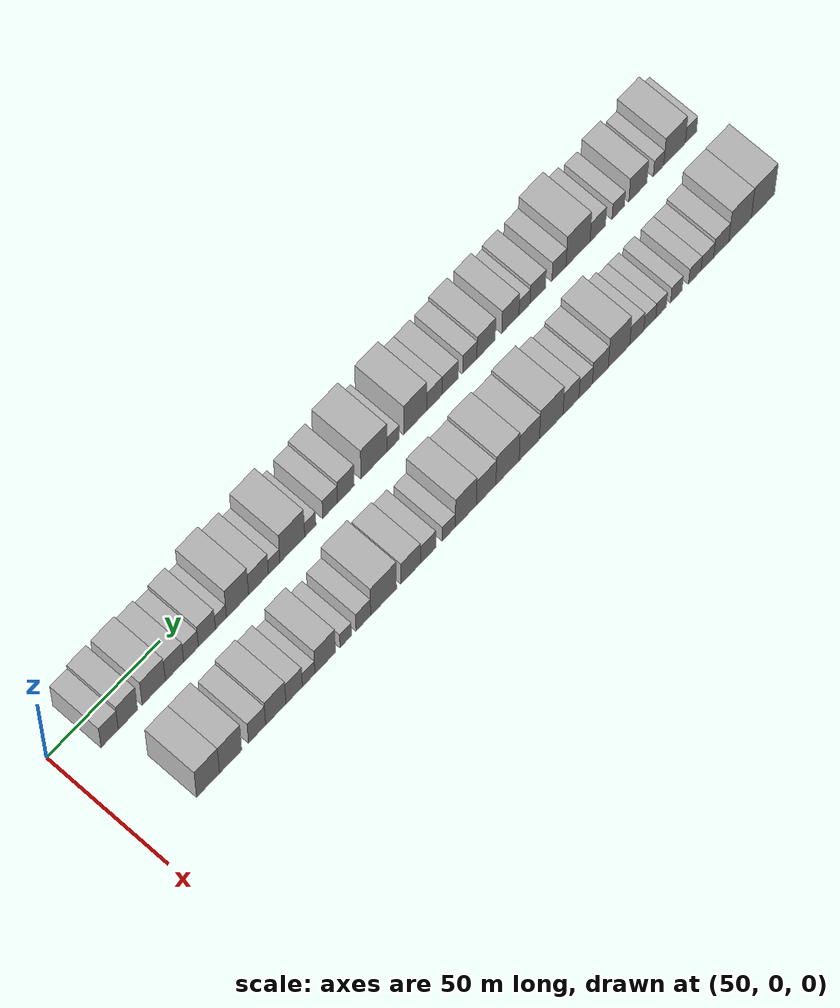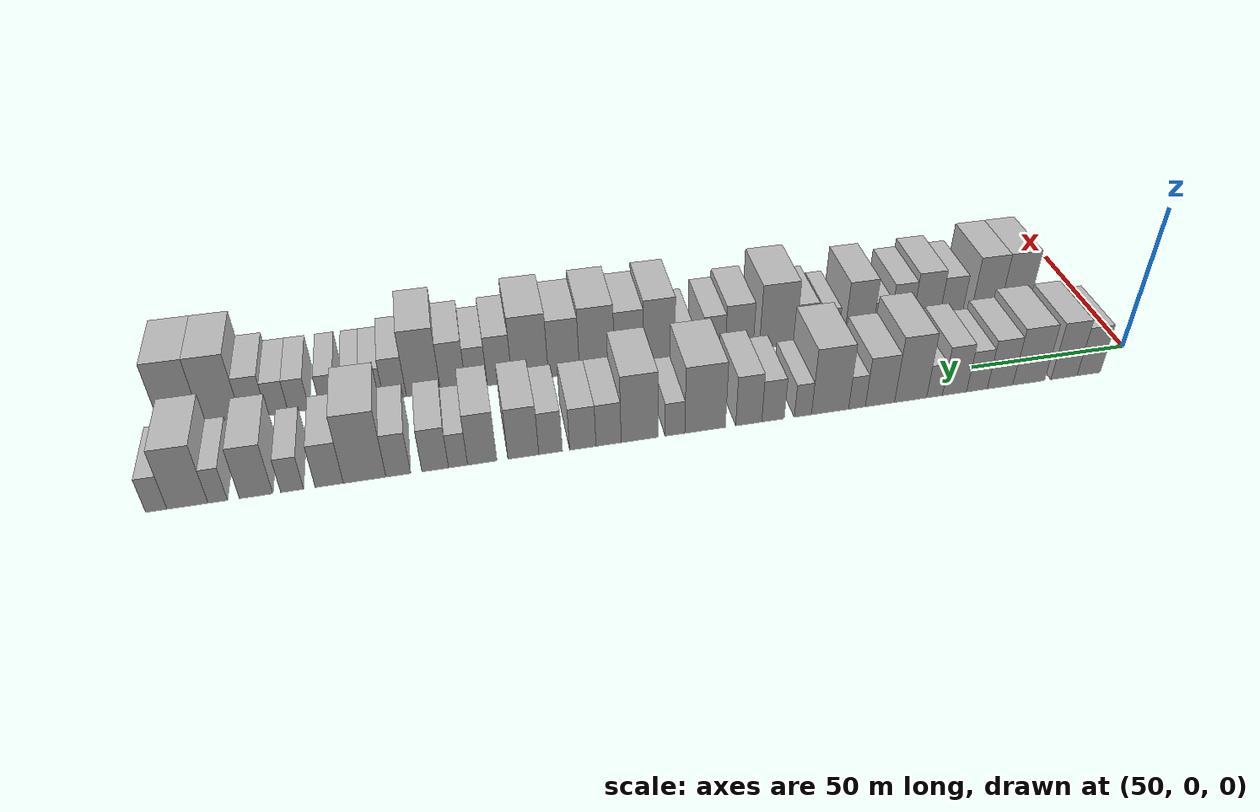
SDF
<sdf version="1.6">
 <world name="default">
  <model name="building_29">
   <static>1</static>
   <pose>50.0000 17.0681 0 0.000000 0.000000 0.000000</pose>
   <link name="link">
    <pose>0 0 9.00 0 0 0</pose>
    <collision name="collision"><geometry><box><size>20.0000 7.6307 18.0000</size></box></geometry></collision>
    <visual name="visual">
     <cast_shadows>0</cast_shadows>
     <geometry><box><size>20.0000 7.6307 18.0000</size></box></geometry>
     <material>
      <script>
       <uri>model://HANNAS_wall/materials/scripts</uri>
       <uri>model://HANNAS_wall/materials/textures</uri>
       <name>vrc/HANNAS_wall</name>
      </script>
     </material>
    </visual>
   </link>
  </model>
  <model name="building_30">
   <static>1</static>
   <pose>50.0000 25.1394 0 0.000000 0.000000 0.000000</pose>
   <link name="link">
    <pose>0 0 10.50 0 0 0</pose>
    <collision name="collision"><geometry><box><size>20.0000 8.5120 21.0000</size></box></geometry></collision>
    <visual name="visual">
     <cast_shadows>0</cast_shadows>
     <geometry><box><size>20.0000 8.5120 21.0000</size></box></geometry>
     <material>
      <script>
       <uri>model://HANNAS_wall/materials/scripts</uri>
       <uri>model://HANNAS_wall/materials/textures</uri>
       <name>vrc/HANNAS_wall</name>
      </script>
     </material>
    </visual>
   </link>
  </model>
  <model name="building_31">
   <static>1</static>
   <pose>50.0000 36.5549 0 0.000000 0.000000 0.000000</pose>
   <link name="link">
    <pose>0 0 10.50 0 0 0</pose>
    <collision name="collision"><geometry><box><size>20.0000 10.3190 21.0000</size></box></geometry></collision>
    <visual name="visual">
     <cast_shadows>0</cast_shadows>
     <geometry><box><size>20.0000 10.3190 21.0000</size></box></geometry>
     <material>
      <script>
       <uri>model://HANNAS_wall/materials/scripts</uri>
       <uri>model://HANNAS_wall/materials/textures</uri>
       <name>vrc/HANNAS_wall</name>
      </script>
     </material>
    </visual>
   </link>
  </model>
  <model name="building_32">
   <static>1</static>
   <pose>50.0000 45.7655 0 0.000000 0.000000 0.000000</pose>
   <link name="link">
    <pose>0 0 9.00 0 0 0</pose>
    <collision name="collision"><geometry><box><size>20.0000 8.1023 18.0000</size></box></geometry></collision>
    <visual name="visual">
     <cast_shadows>0</cast_shadows>
     <geometry><box><size>20.0000 8.1023 18.0000</size></box></geometry>
     <material>
      <script>
       <uri>model://HANNAS_wall/materials/scripts</uri>
       <uri>model://HANNAS_wall/materials/textures</uri>
       <name>vrc/HANNAS_wall</name>
      </script>
     </material>
    </visual>
   </link>
  </model>
  <model name="building_33">
   <static>1</static>
   <pose>50.0000 53.0973 0 0.000000 0.000000 0.000000</pose>
   <link name="link">
    <pose>0 0 7.50 0 0 0</pose>
    <collision name="collision"><geometry><box><size>20.0000 6.5614 15.0000</size></box></geometry></collision>
    <visual name="visual">
     <cast_shadows>0</cast_shadows>
     <geometry><box><size>20.0000 6.5614 15.0000</size></box></geometry>
     <material>
      <script>
       <uri>model://HANNAS_wall/materials/scripts</uri>
       <uri>model://HANNAS_wall/materials/textures</uri>
       <name>vrc/HANNAS_wall</name>
      </script>
     </material>
    </visual>
   </link>
  </model>
  <model name="building_34">
   <static>1</static>
   <pose>50.0000 60.1738 0 0.000000 0.000000 0.000000</pose>
   <link name="link">
    <pose>0 0 9.00 0 0 0</pose>
    <collision name="collision"><geometry><box><size>20.0000 7.5915 18.0000</size></box></geometry></collision>
    <visual name="visual">
     <cast_shadows>0</cast_shadows>
     <geometry><box><size>20.0000 7.5915 18.0000</size></box></geometry>
     <material>
      <script>
       <uri>model://HANNAS_wall/materials/scripts</uri>
       <uri>model://HANNAS_wall/materials/textures</uri>
       <name>vrc/HANNAS_wall</name>
      </script>
     </material>
    </visual>
   </link>
  </model>
  <model name="building_35">
   <static>1</static>
   <pose>50.0000 66.4325 0 0.000000 0.000000 0.000000</pose>
   <link name="link">
    <pose>0 0 6.00 0 0 0</pose>
    <collision name="collision"><geometry><box><size>20.0000 4.9259 12.0000</size></box></geometry></collision>
    <visual name="visual">
     <cast_shadows>0</cast_shadows>
     <geometry><box><size>20.0000 4.9259 12.0000</size></box></geometry>
     <material>
      <script>
       <uri>model://HANNAS_wall/materials/scripts</uri>
       <uri>model://HANNAS_wall/materials/textures</uri>
       <name>vrc/HANNAS_wall</name>
      </script>
     </material>
    </visual>
   </link>
  </model>
  <model name="building_36">
   <static>1</static>
   <pose>50.0000 73.8627 0 0.000000 0.000000 0.000000</pose>
   <link name="link">
    <pose>0 0 12.00 0 0 0</pose>
    <collision name="collision"><geometry><box><size>20.0000 9.9345 24.0000</size></box></geometry></collision>
    <visual name="visual">
     <cast_shadows>0</cast_shadows>
     <geometry><box><size>20.0000 9.9345 24.0000</size></box></geometry>
     <material>
      <script>
       <uri>model://HANNAS_wall/materials/scripts</uri>
       <uri>model://HANNAS_wall/materials/textures</uri>
       <name>vrc/HANNAS_wall</name>
      </script>
     </material>
    </visual>
   </link>
  </model>
  <model name="building_37">
   <static>1</static>
   <pose>50.0000 83.3168 0 0.000000 0.000000 0.000000</pose>
   <link name="link">
    <pose>0 0 9.00 0 0 0</pose>
    <collision name="collision"><geometry><box><size>20.0000 8.9738 18.0000</size></box></geometry></collision>
    <visual name="visual">
     <cast_shadows>0</cast_shadows>
     <geometry><box><size>20.0000 8.9738 18.0000</size></box></geometry>
     <material>
      <script>
       <uri>model://HANNAS_wall/materials/scripts</uri>
       <uri>model://HANNAS_wall/materials/textures</uri>
       <name>vrc/HANNAS_wall</name>
      </script>
     </material>
    </visual>
   </link>
  </model>
  <model name="building_38">
   <static>1</static>
   <pose>50.0000 90.3598 0 0.000000 0.000000 0.000000</pose>
   <link name="link">
    <pose>0 0 6.00 0 0 0</pose>
    <collision name="collision"><geometry><box><size>20.0000 5.1121 12.0000</size></box></geometry></collision>
    <visual name="visual">
     <cast_shadows>0</cast_shadows>
     <geometry><box><size>20.0000 5.1121 12.0000</size></box></geometry>
     <material>
      <script>
       <uri>model://HANNAS_wall/materials/scripts</uri>
       <uri>model://HANNAS_wall/materials/textures</uri>
       <name>vrc/HANNAS_wall</name>
      </script>
     </material>
    </visual>
   </link>
  </model>
  <model name="building_39">
   <static>1</static>
   <pose>50.0000 98.5224 0 0.000000 0.000000 0.000000</pose>
   <link name="link">
    <pose>0 0 12.00 0 0 0</pose>
    <collision name="collision"><geometry><box><size>20.0000 11.2131 24.0000</size></box></geometry></collision>
    <visual name="visual">
     <cast_shadows>0</cast_shadows>
     <geometry><box><size>20.0000 11.2131 24.0000</size></box></geometry>
     <material>
      <script>
       <uri>model://HANNAS_wall/materials/scripts</uri>
       <uri>model://HANNAS_wall/materials/textures</uri>
       <name>vrc/HANNAS_wall</name>
      </script>
     </material>
    </visual>
   </link>
  </model>
  <model name="building_40">
   <static>1</static>
   <pose>50.0000 106.6938 0 0.000000 0.000000 0.000000</pose>
   <link name="link">
    <pose>0 0 6.00 0 0 0</pose>
    <collision name="collision"><geometry><box><size>20.0000 5.1296 12.0000</size></box></geometry></collision>
    <visual name="visual">
     <cast_shadows>0</cast_shadows>
     <geometry><box><size>20.0000 5.1296 12.0000</size></box></geometry>
     <material>
      <script>
       <uri>model://HANNAS_wall/materials/scripts</uri>
       <uri>model://HANNAS_wall/materials/textures</uri>
       <name>vrc/HANNAS_wall</name>
      </script>
     </material>
    </visual>
   </link>
  </model>
  <model name="building_41">
   <static>1</static>
   <pose>50.0000 115.6049 0 0.000000 0.000000 0.000000</pose>
   <link name="link">
    <pose>0 0 7.50 0 0 0</pose>
    <collision name="collision"><geometry><box><size>20.0000 6.6927 15.0000</size></box></geometry></collision>
    <visual name="visual">
     <cast_shadows>0</cast_shadows>
     <geometry><box><size>20.0000 6.6927 15.0000</size></box></geometry>
     <material>
      <script>
       <uri>model://HANNAS_wall/materials/scripts</uri>
       <uri>model://HANNAS_wall/materials/textures</uri>
       <name>vrc/HANNAS_wall</name>
      </script>
     </material>
    </visual>
   </link>
  </model>
  <model name="building_42">
   <static>1</static>
   <pose>50.0000 122.7920 0 0.000000 0.000000 0.000000</pose>
   <link name="link">
    <pose>0 0 9.00 0 0 0</pose>
    <collision name="collision"><geometry><box><size>20.0000 7.6814 18.0000</size></box></geometry></collision>
    <visual name="visual">
     <cast_shadows>0</cast_shadows>
     <geometry><box><size>20.0000 7.6814 18.0000</size></box></geometry>
     <material>
      <script>
       <uri>model://HANNAS_wall/materials/scripts</uri>
       <uri>model://HANNAS_wall/materials/textures</uri>
       <name>vrc/HANNAS_wall</name>
      </script>
     </material>
    </visual>
   </link>
  </model>
  <model name="building_43">
   <static>1</static>
   <pose>50.0000 135.5515 0 0.000000 0.000000 0.000000</pose>
   <link name="link">
    <pose>0 0 12.00 0 0 0</pose>
    <collision name="collision"><geometry><box><size>20.0000 11.8377 24.0000</size></box></geometry></collision>
    <visual name="visual">
     <cast_shadows>0</cast_shadows>
     <geometry><box><size>20.0000 11.8377 24.0000</size></box></geometry>
     <material>
      <script>
       <uri>model://HANNAS_wall/materials/scripts</uri>
       <uri>model://HANNAS_wall/materials/textures</uri>
       <name>vrc/HANNAS_wall</name>
      </script>
     </material>
    </visual>
   </link>
  </model>
  <model name="building_44">
   <static>1</static>
   <pose>50.0000 144.2986 0 0.000000 0.000000 0.000000</pose>
   <link name="link">
    <pose>0 0 6.00 0 0 0</pose>
    <collision name="collision"><geometry><box><size>20.0000 5.6564 12.0000</size></box></geometry></collision>
    <visual name="visual">
     <cast_shadows>0</cast_shadows>
     <geometry><box><size>20.0000 5.6564 12.0000</size></box></geometry>
     <material>
      <script>
       <uri>model://HANNAS_wall/materials/scripts</uri>
       <uri>model://HANNAS_wall/materials/textures</uri>
       <name>vrc/HANNAS_wall</name>
      </script>
     </material>
    </visual>
   </link>
  </model>
  <model name="building_45">
   <static>1</static>
   <pose>50.0000 154.3961 0 0.000000 0.000000 0.000000</pose>
   <link name="link">
    <pose>0 0 12.00 0 0 0</pose>
    <collision name="collision"><geometry><box><size>20.0000 10.5387 24.0000</size></box></geometry></collision>
    <visual name="visual">
     <cast_shadows>0</cast_shadows>
     <geometry><box><size>20.0000 10.5387 24.0000</size></box></geometry>
     <material>
      <script>
       <uri>model://HANNAS_wall/materials/scripts</uri>
       <uri>model://HANNAS_wall/materials/textures</uri>
       <name>vrc/HANNAS_wall</name>
      </script>
     </material>
    </visual>
   </link>
  </model>
  <model name="building_46">
   <static>1</static>
   <pose>50.0000 163.2297 0 0.000000 0.000000 0.000000</pose>
   <link name="link">
    <pose>0 0 7.50 0 0 0</pose>
    <collision name="collision"><geometry><box><size>20.0000 7.1285 15.0000</size></box></geometry></collision>
    <visual name="visual">
     <cast_shadows>0</cast_shadows>
     <geometry><box><size>20.0000 7.1285 15.0000</size></box></geometry>
     <material>
      <script>
       <uri>model://HANNAS_wall/materials/scripts</uri>
       <uri>model://HANNAS_wall/materials/textures</uri>
       <name>vrc/HANNAS_wall</name>
      </script>
     </material>
    </visual>
   </link>
  </model>
  <model name="building_47">
   <static>1</static>
   <pose>50.0000 170.4870 0 0.000000 0.000000 0.000000</pose>
   <link name="link">
    <pose>0 0 7.50 0 0 0</pose>
    <collision name="collision"><geometry><box><size>20.0000 7.3861 15.0000</size></box></geometry></collision>
    <visual name="visual">
     <cast_shadows>0</cast_shadows>
     <geometry><box><size>20.0000 7.3861 15.0000</size></box></geometry>
     <material>
      <script>
       <uri>model://HANNAS_wall/materials/scripts</uri>
       <uri>model://HANNAS_wall/materials/textures</uri>
       <name>vrc/HANNAS_wall</name>
      </script>
     </material>
    </visual>
   </link>
  </model>
  <model name="building_48">
   <static>1</static>
   <pose>50.0000 179.4662 0 0.000000 0.000000 0.000000</pose>
   <link name="link">
    <pose>0 0 7.50 0 0 0</pose>
    <collision name="collision"><geometry><box><size>20.0000 6.5724 15.0000</size></box></geometry></collision>
    <visual name="visual">
     <cast_shadows>0</cast_shadows>
     <geometry><box><size>20.0000 6.5724 15.0000</size></box></geometry>
     <material>
      <script>
       <uri>model://HANNAS_wall/materials/scripts</uri>
       <uri>model://HANNAS_wall/materials/textures</uri>
       <name>vrc/HANNAS_wall</name>
      </script>
     </material>
    </visual>
   </link>
  </model>
  <model name="building_49">
   <static>1</static>
   <pose>50.0000 187.0171 0 0.000000 0.000000 0.000000</pose>
   <link name="link">
    <pose>0 0 9.00 0 0 0</pose>
    <collision name="collision"><geometry><box><size>20.0000 8.5294 18.0000</size></box></geometry></collision>
    <visual name="visual">
     <cast_shadows>0</cast_shadows>
     <geometry><box><size>20.0000 8.5294 18.0000</size></box></geometry>
     <material>
      <script>
       <uri>model://HANNAS_wall/materials/scripts</uri>
       <uri>model://HANNAS_wall/materials/textures</uri>
       <name>vrc/HANNAS_wall</name>
      </script>
     </material>
    </visual>
   </link>
  </model>
  <model name="building_50">
   <static>1</static>
   <pose>50.0000 198.2740 0 0.000000 0.000000 0.000000</pose>
   <link name="link">
    <pose>0 0 9.00 0 0 0</pose>
    <collision name="collision"><geometry><box><size>20.0000 7.9844 18.0000</size></box></geometry></collision>
    <visual name="visual">
     <cast_shadows>0</cast_shadows>
     <geometry><box><size>20.0000 7.9844 18.0000</size></box></geometry>
     <material>
      <script>
       <uri>model://HANNAS_wall/materials/scripts</uri>
       <uri>model://HANNAS_wall/materials/textures</uri>
       <name>vrc/HANNAS_wall</name>
      </script>
     </material>
    </visual>
   </link>
  </model>
  <model name="building_51">
   <static>1</static>
   <pose>50.0000 204.8367 0 0.000000 0.000000 0.000000</pose>
   <link name="link">
    <pose>0 0 6.00 0 0 0</pose>
    <collision name="collision"><geometry><box><size>20.0000 5.1409 12.0000</size></box></geometry></collision>
    <visual name="visual">
     <cast_shadows>0</cast_shadows>
     <geometry><box><size>20.0000 5.1409 12.0000</size></box></geometry>
     <material>
      <script>
       <uri>model://HANNAS_wall/materials/scripts</uri>
       <uri>model://HANNAS_wall/materials/textures</uri>
       <name>vrc/HANNAS_wall</name>
      </script>
     </material>
    </visual>
   </link>
  </model>
  <model name="building_52">
   <static>1</static>
   <pose>50.0000 210.9923 0 0.000000 0.000000 0.000000</pose>
   <link name="link">
    <pose>0 0 7.50 0 0 0</pose>
    <collision name="collision"><geometry><box><size>20.0000 7.1704 15.0000</size></box></geometry></collision>
    <visual name="visual">
     <cast_shadows>0</cast_shadows>
     <geometry><box><size>20.0000 7.1704 15.0000</size></box></geometry>
     <material>
      <script>
       <uri>model://HANNAS_wall/materials/scripts</uri>
       <uri>model://HANNAS_wall/materials/textures</uri>
       <name>vrc/HANNAS_wall</name>
      </script>
     </material>
    </visual>
   </link>
  </model>
  <model name="building_53">
   <static>1</static>
   <pose>50.0000 220.8630 0 0.000000 0.000000 0.000000</pose>
   <link name="link">
    <pose>0 0 7.50 0 0 0</pose>
    <collision name="collision"><geometry><box><size>20.0000 6.5710 15.0000</size></box></geometry></collision>
    <visual name="visual">
     <cast_shadows>0</cast_shadows>
     <geometry><box><size>20.0000 6.5710 15.0000</size></box></geometry>
     <material>
      <script>
       <uri>model://HANNAS_wall/materials/scripts</uri>
       <uri>model://HANNAS_wall/materials/textures</uri>
       <name>vrc/HANNAS_wall</name>
      </script>
     </material>
    </visual>
   </link>
  </model>
  <model name="building_54">
   <static>1</static>
   <pose>50.0000 229.7604 0 0.000000 0.000000 0.000000</pose>
   <link name="link">
    <pose>0 0 12.00 0 0 0</pose>
    <collision name="collision"><geometry><box><size>20.0000 11.2237 24.0000</size></box></geometry></collision>
    <visual name="visual">
     <cast_shadows>0</cast_shadows>
     <geometry><box><size>20.0000 11.2237 24.0000</size></box></geometry>
     <material>
      <script>
       <uri>model://HANNAS_wall/materials/scripts</uri>
       <uri>model://HANNAS_wall/materials/textures</uri>
       <name>vrc/HANNAS_wall</name>
      </script>
     </material>
    </visual>
   </link>
  </model>
  <model name="building_55">
   <static>1</static>
   <pose>50.0000 239.0391 0 0.000000 0.000000 0.000000</pose>
   <link name="link">
    <pose>0 0 7.50 0 0 0</pose>
    <collision name="collision"><geometry><box><size>20.0000 7.3338 15.0000</size></box></geometry></collision>
    <visual name="visual">
     <cast_shadows>0</cast_shadows>
     <geometry><box><size>20.0000 7.3338 15.0000</size></box></geometry>
     <material>
      <script>
       <uri>model://HANNAS_wall/materials/scripts</uri>
       <uri>model://HANNAS_wall/materials/textures</uri>
       <name>vrc/HANNAS_wall</name>
      </script>
     </material>
    </visual>
   </link>
  </model>
  <model name="building_56">
   <static>1</static>
   <pose>50.0000 248.6575 0 0.000000 0.000000 0.000000</pose>
   <link name="link">
    <pose>0 0 6.00 0 0 0</pose>
    <collision name="collision"><geometry><box><size>20.0000 5.9029 12.0000</size></box></geometry></collision>
    <visual name="visual">
     <cast_shadows>0</cast_shadows>
     <geometry><box><size>20.0000 5.9029 12.0000</size></box></geometry>
     <material>
      <script>
       <uri>model://HANNAS_wall/materials/scripts</uri>
       <uri>model://HANNAS_wall/materials/textures</uri>
       <name>vrc/HANNAS_wall</name>
      </script>
     </material>
    </visual>
   </link>
  </model>
  <model name="building_57">
   <static>1</static>
   <pose>50.0000 257.8917 0 0.000000 0.000000 0.000000</pose>
   <link name="link">
    <pose>0 0 9.00 0 0 0</pose>
    <collision name="collision"><geometry><box><size>20.0000 8.5654 18.0000</size></box></geometry></collision>
    <visual name="visual">
     <cast_shadows>0</cast_shadows>
     <geometry><box><size>20.0000 8.5654 18.0000</size></box></geometry>
     <material>
      <script>
       <uri>model://HANNAS_wall/materials/scripts</uri>
       <uri>model://HANNAS_wall/materials/textures</uri>
       <name>vrc/HANNAS_wall</name>
      </script>
     </material>
    </visual>
   </link>
  </model>
  <model name="building_58">
   <static>1</static>
   <pose>50.0000 267.6285 0 0.000000 0.000000 0.000000</pose>
   <link name="link">
    <pose>0 0 6.00 0 0 0</pose>
    <collision name="collision"><geometry><box><size>20.0000 4.9082 12.0000</size></box></geometry></collision>
    <visual name="visual">
     <cast_shadows>0</cast_shadows>
     <geometry><box><size>20.0000 4.9082 12.0000</size></box></geometry>
     <material>
      <script>
       <uri>model://HANNAS_wall/materials/scripts</uri>
       <uri>model://HANNAS_wall/materials/textures</uri>
       <name>vrc/HANNAS_wall</name>
      </script>
     </material>
    </visual>
   </link>
  </model>
  <model name="building_59">
   <static>1</static>
   <pose>50.0000 275.2060 0 0.000000 0.000000 0.000000</pose>
   <link name="link">
    <pose>0 0 10.50 0 0 0</pose>
    <collision name="collision"><geometry><box><size>20.0000 10.2468 21.0000</size></box></geometry></collision>
    <visual name="visual">
     <cast_shadows>0</cast_shadows>
     <geometry><box><size>20.0000 10.2468 21.0000</size></box></geometry>
     <material>
      <script>
       <uri>model://HANNAS_wall/materials/scripts</uri>
       <uri>model://HANNAS_wall/materials/textures</uri>
       <name>vrc/HANNAS_wall</name>
      </script>
     </material>
    </visual>
   </link>
  </model>
  <model name="building_60">
   <static>1</static>
   <pose>50.0000 283.0019 0 0.000000 0.000000 0.000000</pose>
   <link name="link">
    <pose>0 0 6.00 0 0 0</pose>
    <collision name="collision"><geometry><box><size>20.0000 5.3450 12.0000</size></box></geometry></collision>
    <visual name="visual">
     <cast_shadows>0</cast_shadows>
     <geometry><box><size>20.0000 5.3450 12.0000</size></box></geometry>
     <material>
      <script>
       <uri>model://HANNAS_wall/materials/scripts</uri>
       <uri>model://HANNAS_wall/materials/textures</uri>
       <name>vrc/HANNAS_wall</name>
      </script>
     </material>
    </visual>
   </link>
  </model>
  <model name="building_95">
   <static>1</static>
   <pose>82.0000 26.0425 0 0.000000 0.000000 0.000000</pose>
   <link name="link">
    <pose>0 0 12.00 0 0 0</pose>
    <collision name="collision"><geometry><box><size>20.0000 10.1723 24.0000</size></box></geometry></collision>
    <visual name="visual">
     <cast_shadows>0</cast_shadows>
     <geometry><box><size>20.0000 10.1723 24.0000</size></box></geometry>
     <material>
      <script>
       <uri>model://HANNAS_wall/materials/scripts</uri>
       <uri>model://HANNAS_wall/materials/textures</uri>
       <name>vrc/HANNAS_wall</name>
      </script>
     </material>
    </visual>
   </link>
  </model>
  <model name="building_96">
   <static>1</static>
   <pose>82.0000 36.0552 0 0.000000 0.000000 0.000000</pose>
   <link name="link">
    <pose>0 0 12.00 0 0 0</pose>
    <collision name="collision"><geometry><box><size>20.0000 9.8532 24.0000</size></box></geometry></collision>
    <visual name="visual">
     <cast_shadows>0</cast_shadows>
     <geometry><box><size>20.0000 9.8532 24.0000</size></box></geometry>
     <material>
      <script>
       <uri>model://HANNAS_wall/materials/scripts</uri>
       <uri>model://HANNAS_wall/materials/textures</uri>
       <name>vrc/HANNAS_wall</name>
      </script>
     </material>
    </visual>
   </link>
  </model>
  <model name="building_97">
   <static>1</static>
   <pose>82.0000 47.7984 0 0.000000 0.000000 0.000000</pose>
   <link name="link">
    <pose>0 0 9.00 0 0 0</pose>
    <collision name="collision"><geometry><box><size>20.0000 7.6333 18.0000</size></box></geometry></collision>
    <visual name="visual">
     <cast_shadows>0</cast_shadows>
     <geometry><box><size>20.0000 7.6333 18.0000</size></box></geometry>
     <material>
      <script>
       <uri>model://HANNAS_wall/materials/scripts</uri>
       <uri>model://HANNAS_wall/materials/textures</uri>
       <name>vrc/HANNAS_wall</name>
      </script>
     </material>
    </visual>
   </link>
  </model>
  <model name="building_98">
   <static>1</static>
   <pose>82.0000 56.1274 0 0.000000 0.000000 0.000000</pose>
   <link name="link">
    <pose>0 0 10.50 0 0 0</pose>
    <collision name="collision"><geometry><box><size>20.0000 9.0246 21.0000</size></box></geometry></collision>
    <visual name="visual">
     <cast_shadows>0</cast_shadows>
     <geometry><box><size>20.0000 9.0246 21.0000</size></box></geometry>
     <material>
      <script>
       <uri>model://HANNAS_wall/materials/scripts</uri>
       <uri>model://HANNAS_wall/materials/textures</uri>
       <name>vrc/HANNAS_wall</name>
      </script>
     </material>
    </visual>
   </link>
  </model>
  <model name="building_99">
   <static>1</static>
   <pose>82.0000 64.3355 0 0.000000 0.000000 0.000000</pose>
   <link name="link">
    <pose>0 0 9.00 0 0 0</pose>
    <collision name="collision"><geometry><box><size>20.0000 7.3915 18.0000</size></box></geometry></collision>
    <visual name="visual">
     <cast_shadows>0</cast_shadows>
     <geometry><box><size>20.0000 7.3915 18.0000</size></box></geometry>
     <material>
      <script>
       <uri>model://HANNAS_wall/materials/scripts</uri>
       <uri>model://HANNAS_wall/materials/textures</uri>
       <name>vrc/HANNAS_wall</name>
      </script>
     </material>
    </visual>
   </link>
  </model>
  <model name="building_100">
   <static>1</static>
   <pose>82.0000 70.8138 0 0.000000 0.000000 0.000000</pose>
   <link name="link">
    <pose>0 0 6.00 0 0 0</pose>
    <collision name="collision"><geometry><box><size>20.0000 5.5652 12.0000</size></box></geometry></collision>
    <visual name="visual">
     <cast_shadows>0</cast_shadows>
     <geometry><box><size>20.0000 5.5652 12.0000</size></box></geometry>
     <material>
      <script>
       <uri>model://HANNAS_wall/materials/scripts</uri>
       <uri>model://HANNAS_wall/materials/textures</uri>
       <name>vrc/HANNAS_wall</name>
      </script>
     </material>
    </visual>
   </link>
  </model>
  <model name="building_101">
   <static>1</static>
   <pose>82.0000 78.2459 0 0.000000 0.000000 0.000000</pose>
   <link name="link">
    <pose>0 0 10.50 0 0 0</pose>
    <collision name="collision"><geometry><box><size>20.0000 9.2988 21.0000</size></box></geometry></collision>
    <visual name="visual">
     <cast_shadows>0</cast_shadows>
     <geometry><box><size>20.0000 9.2988 21.0000</size></box></geometry>
     <material>
      <script>
       <uri>model://HANNAS_wall/materials/scripts</uri>
       <uri>model://HANNAS_wall/materials/textures</uri>
       <name>vrc/HANNAS_wall</name>
      </script>
     </material>
    </visual>
   </link>
  </model>
  <model name="building_102">
   <static>1</static>
   <pose>82.0000 87.4954 0 0.000000 0.000000 0.000000</pose>
   <link name="link">
    <pose>0 0 6.00 0 0 0</pose>
    <collision name="collision"><geometry><box><size>20.0000 5.2003 12.0000</size></box></geometry></collision>
    <visual name="visual">
     <cast_shadows>0</cast_shadows>
     <geometry><box><size>20.0000 5.2003 12.0000</size></box></geometry>
     <material>
      <script>
       <uri>model://HANNAS_wall/materials/scripts</uri>
       <uri>model://HANNAS_wall/materials/textures</uri>
       <name>vrc/HANNAS_wall</name>
      </script>
     </material>
    </visual>
   </link>
  </model>
  <model name="building_103">
   <static>1</static>
   <pose>82.0000 95.4069 0 0.000000 0.000000 0.000000</pose>
   <link name="link">
    <pose>0 0 7.50 0 0 0</pose>
    <collision name="collision"><geometry><box><size>20.0000 6.6226 15.0000</size></box></geometry></collision>
    <visual name="visual">
     <cast_shadows>0</cast_shadows>
     <geometry><box><size>20.0000 6.6226 15.0000</size></box></geometry>
     <material>
      <script>
       <uri>model://HANNAS_wall/materials/scripts</uri>
       <uri>model://HANNAS_wall/materials/textures</uri>
       <name>vrc/HANNAS_wall</name>
      </script>
     </material>
    </visual>
   </link>
  </model>
  <model name="building_104">
   <static>1</static>
   <pose>82.0000 104.5830 0 0.000000 0.000000 0.000000</pose>
   <link name="link">
    <pose>0 0 12.00 0 0 0</pose>
    <collision name="collision"><geometry><box><size>20.0000 11.7295 24.0000</size></box></geometry></collision>
    <visual name="visual">
     <cast_shadows>0</cast_shadows>
     <geometry><box><size>20.0000 11.7295 24.0000</size></box></geometry>
     <material>
      <script>
       <uri>model://HANNAS_wall/materials/scripts</uri>
       <uri>model://HANNAS_wall/materials/textures</uri>
       <name>vrc/HANNAS_wall</name>
      </script>
     </material>
    </visual>
   </link>
  </model>
  <model name="building_105">
   <static>1</static>
   <pose>82.0000 116.8687 0 0.000000 0.000000 0.000000</pose>
   <link name="link">
    <pose>0 0 9.00 0 0 0</pose>
    <collision name="collision"><geometry><box><size>20.0000 8.8420 18.0000</size></box></geometry></collision>
    <visual name="visual">
     <cast_shadows>0</cast_shadows>
     <geometry><box><size>20.0000 8.8420 18.0000</size></box></geometry>
     <material>
      <script>
       <uri>model://HANNAS_wall/materials/scripts</uri>
       <uri>model://HANNAS_wall/materials/textures</uri>
       <name>vrc/HANNAS_wall</name>
      </script>
     </material>
    </visual>
   </link>
  </model>
  <model name="building_106">
   <static>1</static>
   <pose>82.0000 124.7787 0 0.000000 0.000000 0.000000</pose>
   <link name="link">
    <pose>0 0 7.50 0 0 0</pose>
    <collision name="collision"><geometry><box><size>20.0000 6.9780 15.0000</size></box></geometry></collision>
    <visual name="visual">
     <cast_shadows>0</cast_shadows>
     <geometry><box><size>20.0000 6.9780 15.0000</size></box></geometry>
     <material>
      <script>
       <uri>model://HANNAS_wall/materials/scripts</uri>
       <uri>model://HANNAS_wall/materials/textures</uri>
       <name>vrc/HANNAS_wall</name>
      </script>
     </material>
    </visual>
   </link>
  </model>
  <model name="building_107">
   <static>1</static>
   <pose>82.0000 134.2025 0 0.000000 0.000000 0.000000</pose>
   <link name="link">
    <pose>0 0 6.00 0 0 0</pose>
    <collision name="collision"><geometry><box><size>20.0000 5.8696 12.0000</size></box></geometry></collision>
    <visual name="visual">
     <cast_shadows>0</cast_shadows>
     <geometry><box><size>20.0000 5.8696 12.0000</size></box></geometry>
     <material>
      <script>
       <uri>model://HANNAS_wall/materials/scripts</uri>
       <uri>model://HANNAS_wall/materials/textures</uri>
       <name>vrc/HANNAS_wall</name>
      </script>
     </material>
    </visual>
   </link>
  </model>
  <model name="building_108">
   <static>1</static>
   <pose>82.0000 141.9947 0 0.000000 0.000000 0.000000</pose>
   <link name="link">
    <pose>0 0 12.00 0 0 0</pose>
    <collision name="collision"><geometry><box><size>20.0000 9.7147 24.0000</size></box></geometry></collision>
    <visual name="visual">
     <cast_shadows>0</cast_shadows>
     <geometry><box><size>20.0000 9.7147 24.0000</size></box></geometry>
     <material>
      <script>
       <uri>model://HANNAS_wall/materials/scripts</uri>
       <uri>model://HANNAS_wall/materials/textures</uri>
       <name>vrc/HANNAS_wall</name>
      </script>
     </material>
    </visual>
   </link>
  </model>
  <model name="building_109">
   <static>1</static>
   <pose>82.0000 151.2953 0 0.000000 0.000000 0.000000</pose>
   <link name="link">
    <pose>0 0 10.50 0 0 0</pose>
    <collision name="collision"><geometry><box><size>20.0000 8.8866 21.0000</size></box></geometry></collision>
    <visual name="visual">
     <cast_shadows>0</cast_shadows>
     <geometry><box><size>20.0000 8.8866 21.0000</size></box></geometry>
     <material>
      <script>
       <uri>model://HANNAS_wall/materials/scripts</uri>
       <uri>model://HANNAS_wall/materials/textures</uri>
       <name>vrc/HANNAS_wall</name>
      </script>
     </material>
    </visual>
   </link>
  </model>
  <model name="building_110">
   <static>1</static>
   <pose>82.0000 161.0641 0 0.000000 0.000000 0.000000</pose>
   <link name="link">
    <pose>0 0 12.00 0 0 0</pose>
    <collision name="collision"><geometry><box><size>20.0000 10.6511 24.0000</size></box></geometry></collision>
    <visual name="visual">
     <cast_shadows>0</cast_shadows>
     <geometry><box><size>20.0000 10.6511 24.0000</size></box></geometry>
     <material>
      <script>
       <uri>model://HANNAS_wall/materials/scripts</uri>
       <uri>model://HANNAS_wall/materials/textures</uri>
       <name>vrc/HANNAS_wall</name>
      </script>
     </material>
    </visual>
   </link>
  </model>
  <model name="building_111">
   <static>1</static>
   <pose>82.0000 171.0851 0 0.000000 0.000000 0.000000</pose>
   <link name="link">
    <pose>0 0 10.50 0 0 0</pose>
    <collision name="collision"><geometry><box><size>20.0000 9.3908 21.0000</size></box></geometry></collision>
    <visual name="visual">
     <cast_shadows>0</cast_shadows>
     <geometry><box><size>20.0000 9.3908 21.0000</size></box></geometry>
     <material>
      <script>
       <uri>model://HANNAS_wall/materials/scripts</uri>
       <uri>model://HANNAS_wall/materials/textures</uri>
       <name>vrc/HANNAS_wall</name>
      </script>
     </material>
    </visual>
   </link>
  </model>
  <model name="building_112">
   <static>1</static>
   <pose>82.0000 181.2173 0 0.000000 0.000000 0.000000</pose>
   <link name="link">
    <pose>0 0 12.00 0 0 0</pose>
    <collision name="collision"><geometry><box><size>20.0000 10.8736 24.0000</size></box></geometry></collision>
    <visual name="visual">
     <cast_shadows>0</cast_shadows>
     <geometry><box><size>20.0000 10.8736 24.0000</size></box></geometry>
     <material>
      <script>
       <uri>model://HANNAS_wall/materials/scripts</uri>
       <uri>model://HANNAS_wall/materials/textures</uri>
       <name>vrc/HANNAS_wall</name>
      </script>
     </material>
    </visual>
   </link>
  </model>
  <model name="building_113">
   <static>1</static>
   <pose>82.0000 190.3349 0 0.000000 0.000000 0.000000</pose>
   <link name="link">
    <pose>0 0 9.00 0 0 0</pose>
    <collision name="collision"><geometry><box><size>20.0000 7.3616 18.0000</size></box></geometry></collision>
    <visual name="visual">
     <cast_shadows>0</cast_shadows>
     <geometry><box><size>20.0000 7.3616 18.0000</size></box></geometry>
     <material>
      <script>
       <uri>model://HANNAS_wall/materials/scripts</uri>
       <uri>model://HANNAS_wall/materials/textures</uri>
       <name>vrc/HANNAS_wall</name>
      </script>
     </material>
    </visual>
   </link>
  </model>
  <model name="building_114">
   <static>1</static>
   <pose>82.0000 197.1260 0 0.000000 0.000000 0.000000</pose>
   <link name="link">
    <pose>0 0 7.50 0 0 0</pose>
    <collision name="collision"><geometry><box><size>20.0000 6.2206 15.0000</size></box></geometry></collision>
    <visual name="visual">
     <cast_shadows>0</cast_shadows>
     <geometry><box><size>20.0000 6.2206 15.0000</size></box></geometry>
     <material>
      <script>
       <uri>model://HANNAS_wall/materials/scripts</uri>
       <uri>model://HANNAS_wall/materials/textures</uri>
       <name>vrc/HANNAS_wall</name>
      </script>
     </material>
    </visual>
   </link>
  </model>
  <model name="building_115">
   <static>1</static>
   <pose>82.0000 203.9470 0 0.000000 0.000000 0.000000</pose>
   <link name="link">
    <pose>0 0 9.00 0 0 0</pose>
    <collision name="collision"><geometry><box><size>20.0000 7.4213 18.0000</size></box></geometry></collision>
    <visual name="visual">
     <cast_shadows>0</cast_shadows>
     <geometry><box><size>20.0000 7.4213 18.0000</size></box></geometry>
     <material>
      <script>
       <uri>model://HANNAS_wall/materials/scripts</uri>
       <uri>model://HANNAS_wall/materials/textures</uri>
       <name>vrc/HANNAS_wall</name>
      </script>
     </material>
    </visual>
   </link>
  </model>
  <model name="building_116">
   <static>1</static>
   <pose>82.0000 212.6417 0 0.000000 0.000000 0.000000</pose>
   <link name="link">
    <pose>0 0 12.00 0 0 0</pose>
    <collision name="collision"><geometry><box><size>20.0000 9.9682 24.0000</size></box></geometry></collision>
    <visual name="visual">
     <cast_shadows>0</cast_shadows>
     <geometry><box><size>20.0000 9.9682 24.0000</size></box></geometry>
     <material>
      <script>
       <uri>model://HANNAS_wall/materials/scripts</uri>
       <uri>model://HANNAS_wall/materials/textures</uri>
       <name>vrc/HANNAS_wall</name>
      </script>
     </material>
    </visual>
   </link>
  </model>
  <model name="building_117">
   <static>1</static>
   <pose>82.0000 220.9106 0 0.000000 0.000000 0.000000</pose>
   <link name="link">
    <pose>0 0 7.50 0 0 0</pose>
    <collision name="collision"><geometry><box><size>20.0000 6.5695 15.0000</size></box></geometry></collision>
    <visual name="visual">
     <cast_shadows>0</cast_shadows>
     <geometry><box><size>20.0000 6.5695 15.0000</size></box></geometry>
     <material>
      <script>
       <uri>model://HANNAS_wall/materials/scripts</uri>
       <uri>model://HANNAS_wall/materials/textures</uri>
       <name>vrc/HANNAS_wall</name>
      </script>
     </material>
    </visual>
   </link>
  </model>
  <model name="building_118">
   <static>1</static>
   <pose>82.0000 227.0085 0 0.000000 0.000000 0.000000</pose>
   <link name="link">
    <pose>0 0 6.00 0 0 0</pose>
    <collision name="collision"><geometry><box><size>20.0000 5.6265 12.0000</size></box></geometry></collision>
    <visual name="visual">
     <cast_shadows>0</cast_shadows>
     <geometry><box><size>20.0000 5.6265 12.0000</size></box></geometry>
     <material>
      <script>
       <uri>model://HANNAS_wall/materials/scripts</uri>
       <uri>model://HANNAS_wall/materials/textures</uri>
       <name>vrc/HANNAS_wall</name>
      </script>
     </material>
    </visual>
   </link>
  </model>
  <model name="building_119">
   <static>1</static>
   <pose>82.0000 232.3192 0 0.000000 0.000000 0.000000</pose>
   <link name="link">
    <pose>0 0 6.00 0 0 0</pose>
    <collision name="collision"><geometry><box><size>20.0000 4.9948 12.0000</size></box></geometry></collision>
    <visual name="visual">
     <cast_shadows>0</cast_shadows>
     <geometry><box><size>20.0000 4.9948 12.0000</size></box></geometry>
     <material>
      <script>
       <uri>model://HANNAS_wall/materials/scripts</uri>
       <uri>model://HANNAS_wall/materials/textures</uri>
       <name>vrc/HANNAS_wall</name>
      </script>
     </material>
    </visual>
   </link>
  </model>
  <model name="building_120">
   <static>1</static>
   <pose>82.0000 239.5135 0 0.000000 0.000000 0.000000</pose>
   <link name="link">
    <pose>0 0 6.00 0 0 0</pose>
    <collision name="collision"><geometry><box><size>20.0000 5.3939 12.0000</size></box></geometry></collision>
    <visual name="visual">
     <cast_shadows>0</cast_shadows>
     <geometry><box><size>20.0000 5.3939 12.0000</size></box></geometry>
     <material>
      <script>
       <uri>model://HANNAS_wall/materials/scripts</uri>
       <uri>model://HANNAS_wall/materials/textures</uri>
       <name>vrc/HANNAS_wall</name>
      </script>
     </material>
    </visual>
   </link>
  </model>
  <model name="building_121">
   <static>1</static>
   <pose>82.0000 248.1467 0 0.000000 0.000000 0.000000</pose>
   <link name="link">
    <pose>0 0 6.00 0 0 0</pose>
    <collision name="collision"><geometry><box><size>20.0000 5.8724 12.0000</size></box></geometry></collision>
    <visual name="visual">
     <cast_shadows>0</cast_shadows>
     <geometry><box><size>20.0000 5.8724 12.0000</size></box></geometry>
     <material>
      <script>
       <uri>model://HANNAS_wall/materials/scripts</uri>
       <uri>model://HANNAS_wall/materials/textures</uri>
       <name>vrc/HANNAS_wall</name>
      </script>
     </material>
    </visual>
   </link>
  </model>
  <model name="building_122">
   <static>1</static>
   <pose>82.0000 254.0675 0 0.000000 0.000000 0.000000</pose>
   <link name="link">
    <pose>0 0 6.00 0 0 0</pose>
    <collision name="collision"><geometry><box><size>20.0000 5.9691 12.0000</size></box></geometry></collision>
    <visual name="visual">
     <cast_shadows>0</cast_shadows>
     <geometry><box><size>20.0000 5.9691 12.0000</size></box></geometry>
     <material>
      <script>
       <uri>model://HANNAS_wall/materials/scripts</uri>
       <uri>model://HANNAS_wall/materials/textures</uri>
       <name>vrc/HANNAS_wall</name>
      </script>
     </material>
    </visual>
   </link>
  </model>
  <model name="building_123">
   <static>1</static>
   <pose>82.0000 260.5983 0 0.000000 0.000000 0.000000</pose>
   <link name="link">
    <pose>0 0 7.50 0 0 0</pose>
    <collision name="collision"><geometry><box><size>20.0000 7.0926 15.0000</size></box></geometry></collision>
    <visual name="visual">
     <cast_shadows>0</cast_shadows>
     <geometry><box><size>20.0000 7.0926 15.0000</size></box></geometry>
     <material>
      <script>
       <uri>model://HANNAS_wall/materials/scripts</uri>
       <uri>model://HANNAS_wall/materials/textures</uri>
       <name>vrc/HANNAS_wall</name>
      </script>
     </material>
    </visual>
   </link>
  </model>
  <model name="building_124">
   <static>1</static>
   <pose>82.0000 269.4895 0 0.000000 0.000000 0.000000</pose>
   <link name="link">
    <pose>0 0 12.00 0 0 0</pose>
    <collision name="collision"><geometry><box><size>20.0000 10.6897 24.0000</size></box></geometry></collision>
    <visual name="visual">
     <cast_shadows>0</cast_shadows>
     <geometry><box><size>20.0000 10.6897 24.0000</size></box></geometry>
     <material>
      <script>
       <uri>model://HANNAS_wall/materials/scripts</uri>
       <uri>model://HANNAS_wall/materials/textures</uri>
       <name>vrc/HANNAS_wall</name>
      </script>
     </material>
    </visual>
   </link>
  </model>
  <model name="building_125">
   <static>1</static>
   <pose>82.0000 280.3538 0 0.000000 0.000000 0.000000</pose>
   <link name="link">
    <pose>0 0 12.00 0 0 0</pose>
    <collision name="collision"><geometry><box><size>20.0000 11.0390 24.0000</size></box></geometry></collision>
    <visual name="visual">
     <cast_shadows>0</cast_shadows>
     <geometry><box><size>20.0000 11.0390 24.0000</size></box></geometry>
     <material>
      <script>
       <uri>model://HANNAS_wall/materials/scripts</uri>
       <uri>model://HANNAS_wall/materials/textures</uri>
       <name>vrc/HANNAS_wall</name>
      </script>
     </material>
    </visual>
   </link>
  </model>
 </world>
</sdf>
